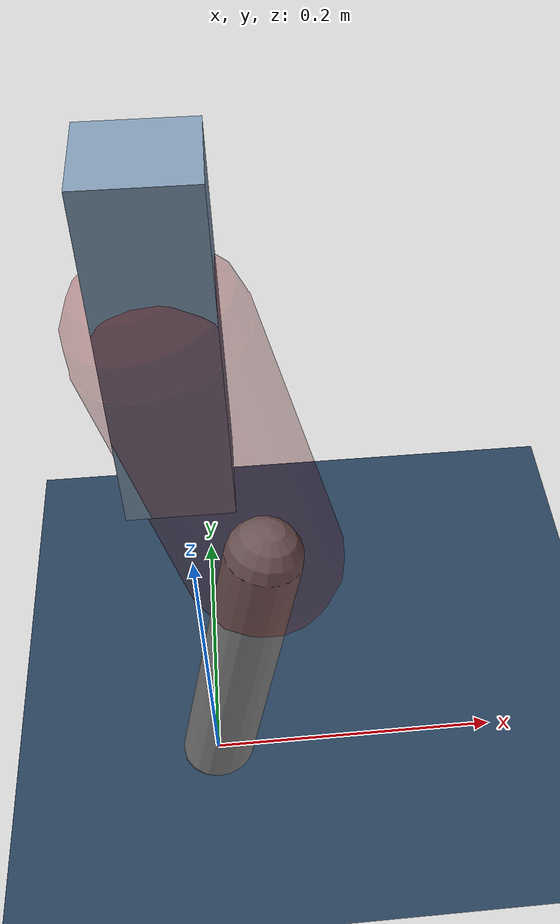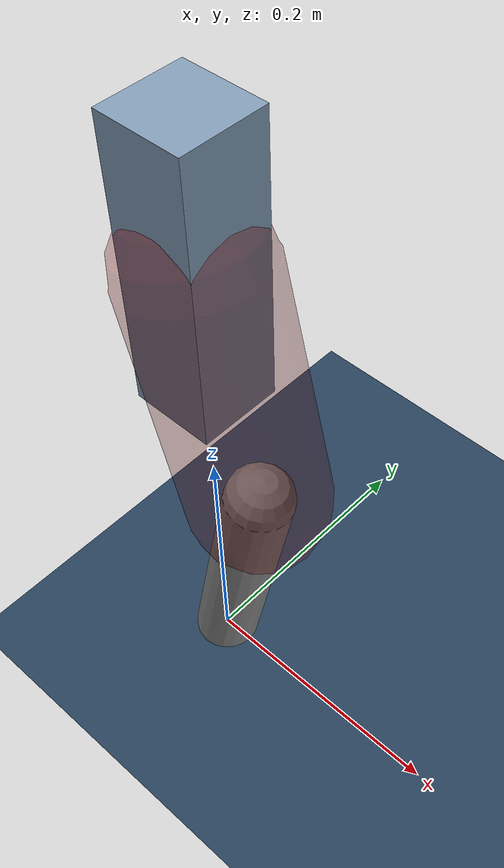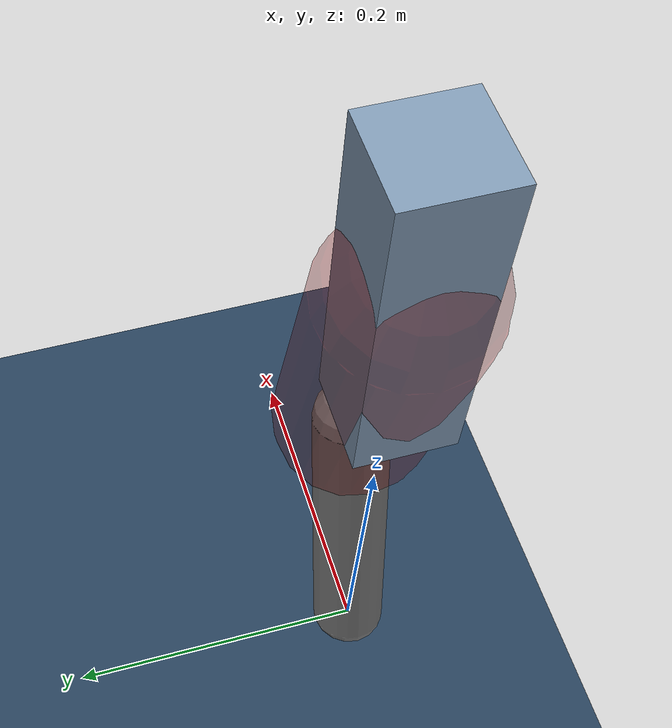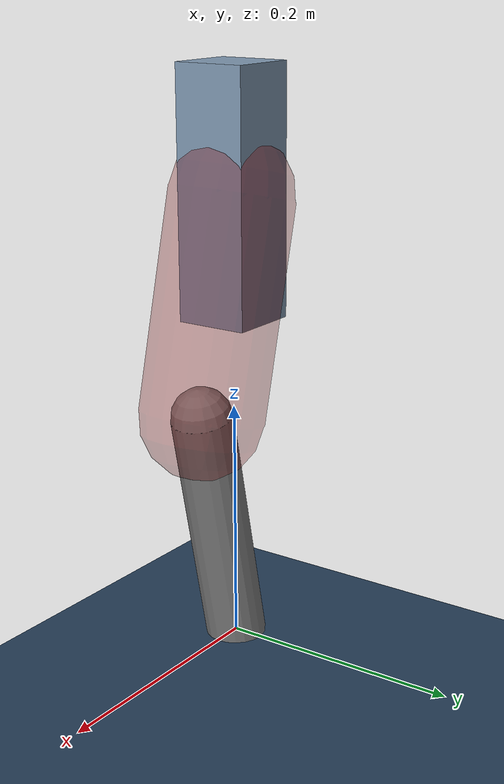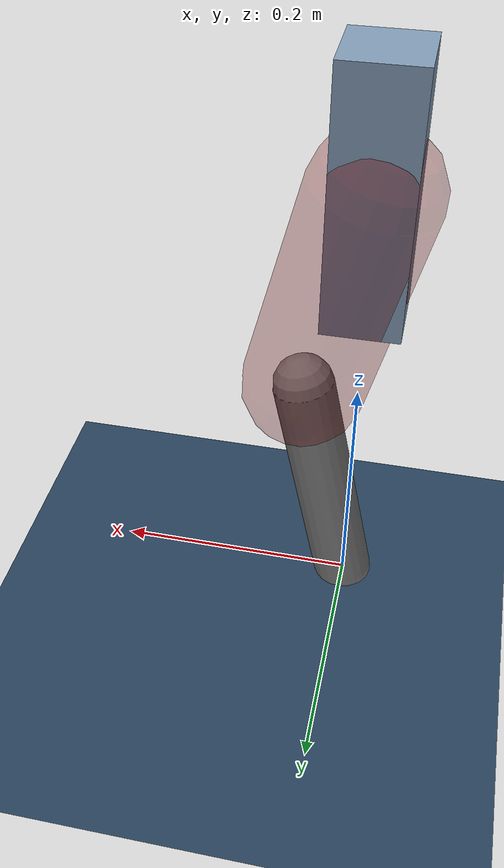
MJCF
<mujoco model="Hopper2D">
	<compiler inertiafromgeom="true" angle="radian" />
	<option timestep="0.001" integrator="implicit" cone="elliptic" solver="Newton" tolerance="1e-10" />

	<default>
		<geom contype="1" conaffinity="1" condim="3" friction="2 0.005 0.0001" solref="0.005 1" />
		<joint limited="true" damping="0.1" />
	</default>

	<asset>
		<texture name="skybox" type="skybox" builtin="gradient" rgb1=".4 .6 .8" rgb2="0 0 0" width="800" height="800" />
		<texture name="grid" type="2d" builtin="checker" rgb1=".1 .2 .3" rgb2=".2 .3 .4" width="300" height="300" mark="edge" markrgb=".2 .3 .4" />
		<material name="ground" texture="grid" texrepeat="1 1" texuniform="true" reflectance="0.1" />
		<material name="leg" rgba="0.5 0.6 0.7 1" />
	</asset>

	<worldbody>

		<geom name="floor" type="plane" size="5 5 0.25" material="ground" />

		<light directional="false" diffuse="0.8 0.8 0.8" specular="0.3 0.3 0.3" pos="0 0 2" dir="0 0 -1" />
		<light mode="targetbodycom" target="base" directional="false" diffuse="0.8 0.8 0.8" specular="0.3 0.3 0.3" pos="0 0 2" dir="0 0 -1" />

		<camera name="fixed" pos="0 -2 1" xyaxes="1 0 0 0 0 1" />
		<camera name="tracking" mode="trackcom" pos="0 -3 1" />

		<body name="root" pos="0 0 0.37292893993105425">
			<joint name="slide_x" type="slide" axis="1 0 0" range="-100 100" />
			<joint name="slide_z" type="slide" axis="0 0 1" range="0 10" />

			<body name="base" pos="0 0 0">
				<geom name="torso" type="box" size="0.03 0.03 0.1" mass="2.7169999999999996" material="leg" />

				<body name="link1" pos="0 0 0" euler="0 1.3220631333012343 0">
					<joint type="hinge" axis="0 -1 0" pos="0 0 0" name="hinge1" limited="true" range="-3.14 3.14" stiffness="0" damping="0.1" />
					<geom name="thigh" type="capsule" fromto="0 0 0 0.17597023951386367 0 0" size="0.05" rgba="0.5 0 0 0.3" mass="0.6707285748332728" />

					<body name="link2" pos="0.17597023951386367 0 0" euler="0 0.45960831687065473 0">
						<joint type="hinge" axis="0 -1 0" pos="0 0 0" name="hinge2" limited="true" range="-3.14 3.14" stiffness="0" damping="0.1" />
						<geom name="shank" type="capsule" fromto="0 0 0 0.2069587004171906 0 0" size="0.025" mass="0.40676283037547156" />

					</body>
				</body>
			</body>
		</body>
	</worldbody>

	<actuator>
		<motor name="torque1" joint="hinge1" ctrlrange="-77.8165590241212 77.8165590241212" ctrllimited="true" gear="1" />
		<motor name="torque2" joint="hinge2" ctrlrange="-176.03475184522676 176.03475184522676" ctrllimited="true" gear="1" />
	</actuator>
</mujoco>
